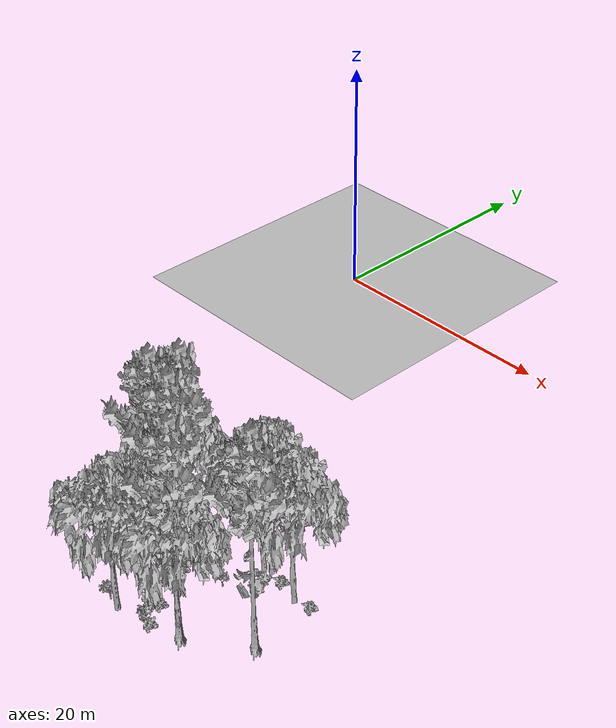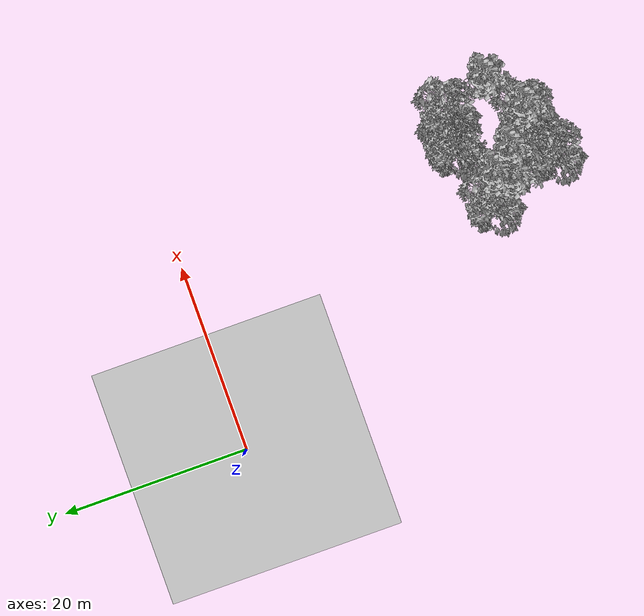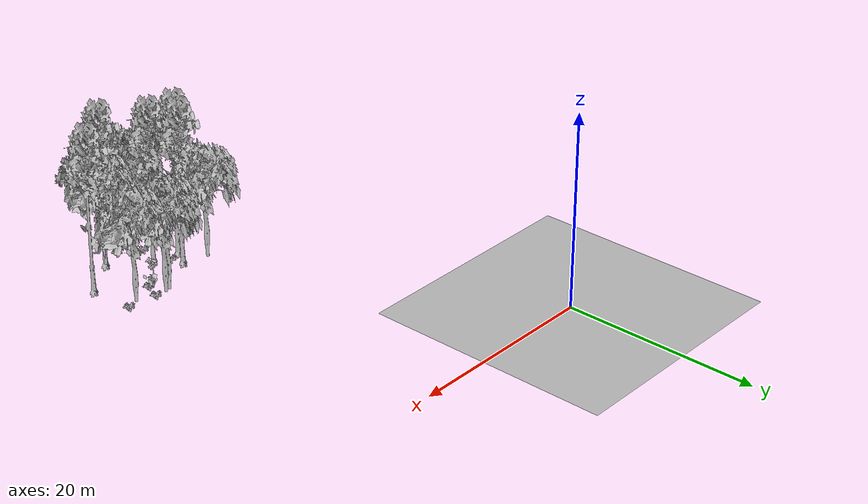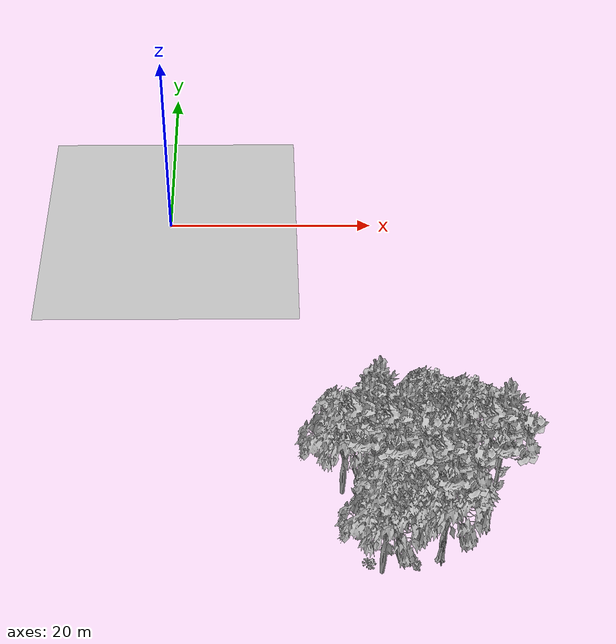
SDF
<sdf version="1.7">
 <world name="default">
  <model name="ground_plane">
   <static>1</static>
   <link name="link">
    <collision name="collision">
     <pose>-50 0 0 0 -0 0</pose>
     <geometry><plane><normal>0 0 1</normal><size>80 80</size></plane></geometry>
     <surface><contact><ode><min_depth>0.01</min_depth><max_vel>0</max_vel></ode></contact></surface>
    </collision>
    <visual name="grass">
     <cast_shadows>0</cast_shadows>
     <geometry>
      <mesh>
       <scale>0.46714285714285714 0.46714285714285714 0.1</scale>
       <uri>file://grass_plane/meshes/grass_plane.dae</uri>
      </mesh>
     </geometry>
    </visual>
   </link>
  </model>
  <model name="Tree 6">
   <static>1</static>
   <pose>19.761789840491915 -37.90482083017761 0 1.57079 -0 0</pose>
   <link name="link">
    <collision name="collision">
     <geometry><mesh><scale>3.5 5 3.5</scale><uri>model://tree_2/meshes/tree_2.obj</uri></mesh></geometry>
    </collision>
    <visual name="visual">
     <geometry><mesh><scale>3.5 5 3.5</scale><uri>model://tree_2/meshes/tree_2.obj</uri></mesh></geometry>
    </visual>
   </link>
  </model>
  <model name="Tree 100">
   <static>1</static>
   <pose>16.93342433898865 -34.98669915986273 0 1.57079 -0 0</pose>
   <link name="link">
    <collision name="collision">
     <geometry><mesh><scale>3.5 5 3.5</scale><uri>model://tree_9/meshes/tree_9.obj</uri></mesh></geometry>
    </collision>
    <visual name="visual">
     <geometry><mesh><scale>3.5 5 3.5</scale><uri>model://tree_9/meshes/tree_9.obj</uri></mesh></geometry>
    </visual>
   </link>
  </model>
  <model name="Tree 261">
   <static>1</static>
   <pose>19.615575339170526 -35.58397647291241 0 1.57079 -0 0</pose>
   <link name="link">
    <collision name="collision">
     <geometry><mesh><scale>3.5 5 3.5</scale><uri>model://tree_9/meshes/tree_9.obj</uri></mesh></geometry>
    </collision>
    <visual name="visual">
     <geometry><mesh><scale>3.5 5 3.5</scale><uri>model://tree_9/meshes/tree_9.obj</uri></mesh></geometry>
    </visual>
   </link>
  </model>
  <model name="Tree 340">
   <static>1</static>
   <pose>15.551641247170828 -32.181197148456675 0 1.57079 -0 0</pose>
   <link name="link">
    <collision name="collision">
     <geometry><mesh><scale>3.5 5 3.5</scale><uri>model://tree_2/meshes/tree_2.obj</uri></mesh></geometry>
    </collision>
    <visual name="visual">
     <geometry><mesh><scale>3.5 5 3.5</scale><uri>model://tree_2/meshes/tree_2.obj</uri></mesh></geometry>
    </visual>
   </link>
  </model>
  <model name="Tree 359">
   <static>1</static>
   <pose>23.224196878258574 -38.426021737564334 0 1.57079 -0 0</pose>
   <link name="link">
    <collision name="collision">
     <geometry><mesh><scale>3.5 5 3.5</scale><uri>model://tree_9/meshes/tree_9.obj</uri></mesh></geometry>
    </collision>
    <visual name="visual">
     <geometry><mesh><scale>3.5 5 3.5</scale><uri>model://tree_9/meshes/tree_9.obj</uri></mesh></geometry>
    </visual>
   </link>
  </model>
  <model name="Tree 369">
   <static>1</static>
   <pose>27.23702415755743 -35.500838521147244 0 1.57079 -0 0</pose>
   <link name="link">
    <collision name="collision">
     <geometry><mesh><scale>3.5 5 3.5</scale><uri>model://tree_9/meshes/tree_9.obj</uri></mesh></geometry>
    </collision>
    <visual name="visual">
     <geometry><mesh><scale>3.5 5 3.5</scale><uri>model://tree_9/meshes/tree_9.obj</uri></mesh></geometry>
    </visual>
   </link>
  </model>
  <model name="Tree 375">
   <static>1</static>
   <pose>25.863465740353902 -30.97243872611798 0 1.57079 -0 0</pose>
   <link name="link">
    <collision name="collision">
     <geometry><mesh><scale>3.5 5 3.5</scale><uri>model://tree_2/meshes/tree_2.obj</uri></mesh></geometry>
    </collision>
    <visual name="visual">
     <geometry><mesh><scale>3.5 5 3.5</scale><uri>model://tree_2/meshes/tree_2.obj</uri></mesh></geometry>
    </visual>
   </link>
  </model>
  <model name="Tree 419">
   <static>1</static>
   <pose>22.798883776573668 -30.227814316268287 0 1.57079 -0 0</pose>
   <link name="link">
    <collision name="collision">
     <geometry><mesh><scale>3.5 5 3.5</scale><uri>model://tree_2/meshes/tree_2.obj</uri></mesh></geometry>
    </collision>
    <visual name="visual">
     <geometry><mesh><scale>3.5 5 3.5</scale><uri>model://tree_2/meshes/tree_2.obj</uri></mesh></geometry>
    </visual>
   </link>
  </model>
  <model name="Tree 454">
   <static>1</static>
   <pose>17.870532772217572 -33.274568502264756 0 1.57079 -0 0</pose>
   <link name="link">
    <collision name="collision">
     <geometry><mesh><scale>3.5 5 3.5</scale><uri>model://tree_9/meshes/tree_9.obj</uri></mesh></geometry>
    </collision>
    <visual name="visual">
     <geometry><mesh><scale>3.5 5 3.5</scale><uri>model://tree_9/meshes/tree_9.obj</uri></mesh></geometry>
    </visual>
   </link>
  </model>
  <model name="Tree 604">
   <static>1</static>
   <pose>18.34757403339188 -39.76659326058115 0 1.57079 -0 0</pose>
   <link name="link">
    <collision name="collision">
     <geometry><mesh><scale>3.5 5 3.5</scale><uri>model://tree_2/meshes/tree_2.obj</uri></mesh></geometry>
    </collision>
    <visual name="visual">
     <geometry><mesh><scale>3.5 5 3.5</scale><uri>model://tree_2/meshes/tree_2.obj</uri></mesh></geometry>
    </visual>
   </link>
  </model>
  <model name="Tree 615">
   <static>1</static>
   <pose>23.15548218763852 -38.37401205415176 0 1.57079 -0 0</pose>
   <link name="link">
    <collision name="collision">
     <geometry><mesh><scale>3.5 5 3.5</scale><uri>model://tree_2/meshes/tree_2.obj</uri></mesh></geometry>
    </collision>
    <visual name="visual">
     <geometry><mesh><scale>3.5 5 3.5</scale><uri>model://tree_2/meshes/tree_2.obj</uri></mesh></geometry>
    </visual>
   </link>
  </model>
  <model name="Tree 617">
   <static>1</static>
   <pose>22.231959235522126 -30.39305718171919 0 1.57079 -0 0</pose>
   <link name="link">
    <collision name="collision">
     <geometry><mesh><scale>3.5 5 3.5</scale><uri>model://tree_2/meshes/tree_2.obj</uri></mesh></geometry>
    </collision>
    <visual name="visual">
     <geometry><mesh><scale>3.5 5 3.5</scale><uri>model://tree_2/meshes/tree_2.obj</uri></mesh></geometry>
    </visual>
   </link>
  </model>
  <model name="Bush 42">
   <static>1</static>
   <pose>20.087153331802227 -37.56015691776592 0 1.57079 -0 0</pose>
   <link name="link">
    <collision name="collision">
     <geometry><mesh><scale>2 2 2</scale><uri>model://bush_2/meshes/bush_2.obj</uri></mesh></geometry>
     <surface><contact><collide_without_contact>false</collide_without_contact></contact></surface>
    </collision>
    <visual name="visual">
     <geometry><mesh><scale>2 2 2</scale><uri>model://bush_2/meshes/bush_2.obj</uri></mesh></geometry>
    </visual>
   </link>
  </model>
  <model name="Bush 106">
   <static>1</static>
   <pose>18.9927316494498 -37.71192523485762 0 1.57079 -0 0</pose>
   <link name="link">
    <collision name="collision">
     <geometry><mesh><scale>2 2 2</scale><uri>model://bush_2/meshes/bush_2.obj</uri></mesh></geometry>
     <surface><contact><collide_without_contact>false</collide_without_contact></contact></surface>
    </collision>
    <visual name="visual">
     <geometry><mesh><scale>2 2 2</scale><uri>model://bush_2/meshes/bush_2.obj</uri></mesh></geometry>
    </visual>
   </link>
  </model>
  <model name="Bush 135">
   <static>1</static>
   <pose>23.573384041089568 -31.55628499856106 0 1.57079 -0 0</pose>
   <link name="link">
    <collision name="collision">
     <geometry><mesh><scale>2 2 2</scale><uri>model://bush_0/meshes/bush_0.obj</uri></mesh></geometry>
     <surface><contact><collide_without_contact>false</collide_without_contact></contact></surface>
    </collision>
    <visual name="visual">
     <geometry><mesh><scale>2 2 2</scale><uri>model://bush_0/meshes/bush_0.obj</uri></mesh></geometry>
    </visual>
   </link>
  </model>
  <model name="Bush 181">
   <static>1</static>
   <pose>20.542317763686597 -39.179769136752505 0 1.57079 -0 0</pose>
   <link name="link">
    <collision name="collision">
     <geometry><mesh><scale>2 2 2</scale><uri>model://bush_4/meshes/bush_4.obj</uri></mesh></geometry>
     <surface><contact><collide_without_contact>false</collide_without_contact></contact></surface>
    </collision>
    <visual name="visual">
     <geometry><mesh><scale>2 2 2</scale><uri>model://bush_4/meshes/bush_4.obj</uri></mesh></geometry>
    </visual>
   </link>
  </model>
  <model name="Bush 356">
   <static>1</static>
   <pose>24.01666025491337 -30.395703186135634 0 1.57079 -0 0</pose>
   <link name="link">
    <collision name="collision">
     <geometry><mesh><scale>2 2 2</scale><uri>model://bush_2/meshes/bush_2.obj</uri></mesh></geometry>
     <surface><contact><collide_without_contact>false</collide_without_contact></contact></surface>
    </collision>
    <visual name="visual">
     <geometry><mesh><scale>2 2 2</scale><uri>model://bush_2/meshes/bush_2.obj</uri></mesh></geometry>
    </visual>
   </link>
  </model>
  <model name="Bush 419">
   <static>1</static>
   <pose>27.11778282629949 -30.657195030490485 0 1.57079 -0 0</pose>
   <link name="link">
    <collision name="collision">
     <geometry><mesh><scale>2 2 2</scale><uri>model://bush_2/meshes/bush_2.obj</uri></mesh></geometry>
     <surface><contact><collide_without_contact>false</collide_without_contact></contact></surface>
    </collision>
    <visual name="visual">
     <geometry><mesh><scale>2 2 2</scale><uri>model://bush_2/meshes/bush_2.obj</uri></mesh></geometry>
    </visual>
   </link>
  </model>
  <model name="Bush 441">
   <static>1</static>
   <pose>23.375218651829478 -32.08921369133839 0 1.57079 -0 0</pose>
   <link name="link">
    <collision name="collision">
     <geometry><mesh><scale>2 2 2</scale><uri>model://bush_2/meshes/bush_2.obj</uri></mesh></geometry>
     <surface><contact><collide_without_contact>false</collide_without_contact></contact></surface>
    </collision>
    <visual name="visual">
     <geometry><mesh><scale>2 2 2</scale><uri>model://bush_2/meshes/bush_2.obj</uri></mesh></geometry>
    </visual>
   </link>
  </model>
  <model name="Bush 474">
   <static>1</static>
   <pose>17.402105195201912 -39.52083502342302 0 1.57079 -0 0</pose>
   <link name="link">
    <collision name="collision">
     <geometry><mesh><scale>2 2 2</scale><uri>model://bush_5/meshes/bush_5.obj</uri></mesh></geometry>
     <surface><contact><collide_without_contact>false</collide_without_contact></contact></surface>
    </collision>
    <visual name="visual">
     <geometry><mesh><scale>2 2 2</scale><uri>model://bush_5/meshes/bush_5.obj</uri></mesh></geometry>
    </visual>
   </link>
  </model>
  <model name="Bush 495">
   <static>1</static>
   <pose>21.0624551503186 -39.19777937337674 0 1.57079 -0 0</pose>
   <link name="link">
    <collision name="collision">
     <geometry><mesh><scale>2 2 2</scale><uri>model://bush_2/meshes/bush_2.obj</uri></mesh></geometry>
     <surface><contact><collide_without_contact>false</collide_without_contact></contact></surface>
    </collision>
    <visual name="visual">
     <geometry><mesh><scale>2 2 2</scale><uri>model://bush_2/meshes/bush_2.obj</uri></mesh></geometry>
    </visual>
   </link>
  </model>
  <model name="Bush 543">
   <static>1</static>
   <pose>21.594502015936897 -33.41092273289683 0 1.57079 -0 0</pose>
   <link name="link">
    <collision name="collision">
     <geometry><mesh><scale>2 2 2</scale><uri>model://bush_5/meshes/bush_5.obj</uri></mesh></geometry>
     <surface><contact><collide_without_contact>false</collide_without_contact></contact></surface>
    </collision>
    <visual name="visual">
     <geometry><mesh><scale>2 2 2</scale><uri>model://bush_5/meshes/bush_5.obj</uri></mesh></geometry>
    </visual>
   </link>
  </model>
  <model name="Bush 551">
   <static>1</static>
   <pose>18.471261128682883 -34.395915741225274 0 1.57079 -0 0</pose>
   <link name="link">
    <collision name="collision">
     <geometry><mesh><scale>2 2 2</scale><uri>model://bush_2/meshes/bush_2.obj</uri></mesh></geometry>
     <surface><contact><collide_without_contact>false</collide_without_contact></contact></surface>
    </collision>
    <visual name="visual">
     <geometry><mesh><scale>2 2 2</scale><uri>model://bush_2/meshes/bush_2.obj</uri></mesh></geometry>
    </visual>
   </link>
  </model>
 </world>
</sdf>
